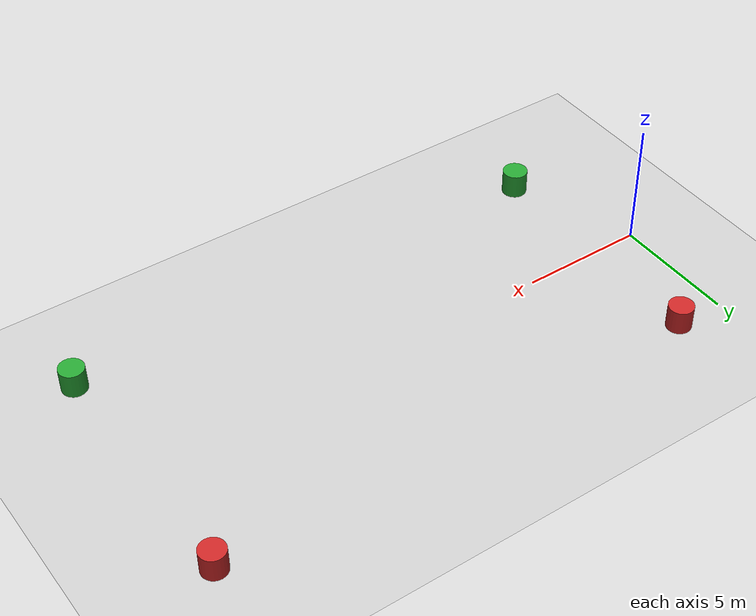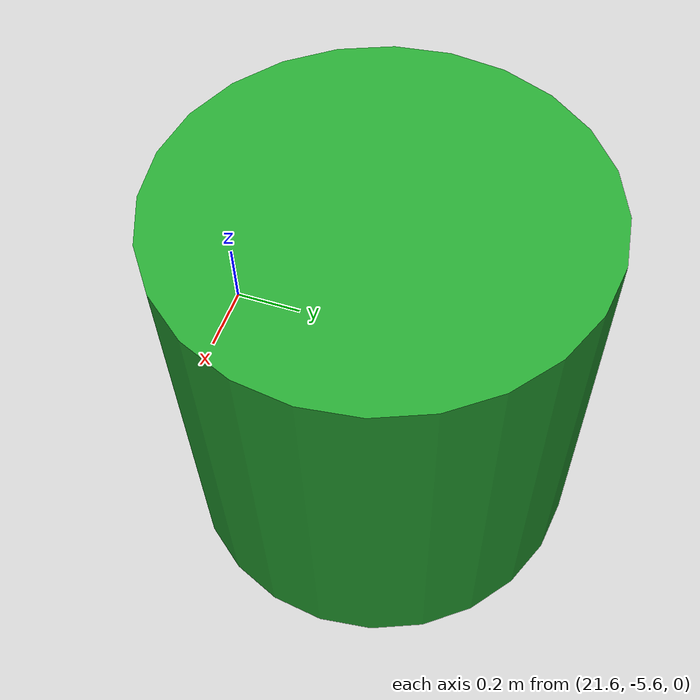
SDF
<sdf version="1.6">
 <world name="default">
  <light name="sun" type="directional">
   <pose>0 0 10 0 -0 0</pose>
   <diffuse>0.8 0.8 0.8 1</diffuse>
   <specular>0.1 0.1 0.1 1</specular>
   <attenuation>
    <range>1000</range>
    <constant>0.9</constant>
    <linear>0.01</linear>
    <quadratic>0.001</quadratic>
   </attenuation>
   <direction>-0.5 0.5 -1</direction>
  </light>
  <model name="ground_plane">
   <static>1</static>
   <link name="link">
    <collision name="collision">
     <geometry><plane><normal>0 0 1</normal><size>100 100</size></plane></geometry>
     <surface><friction><ode><mu>100</mu><mu2>50</mu2></ode></friction></surface>
    </collision>
    <visual name="visual">
     <cast_shadows>0</cast_shadows>
     <geometry><plane><normal>0 0 1</normal><size>100 100</size></plane></geometry>
     <material>
      <script><uri>file://media/materials/scripts/gazebo.material</uri><name>Gazebo/Grey</name></script>
     </material>
    </visual>
   </link>
  </model>
  <gravity>0 0 -9.8</gravity>
  <magnetic_field>6e-06 2.3e-05 -4.2e-05</magnetic_field>
  <atmosphere type="adiabatic"/>
  <physics name="default_physics" default="0" type="ode">
   <max_step_size>0.001</max_step_size>
   <real_time_factor>1</real_time_factor>
   <real_time_update_rate>1000</real_time_update_rate>
  </physics>
  <scene><ambient>0.4 0.4 0.4 1</ambient><background>0.7 0.7 0.7 1</background><shadows>1</shadows></scene>
  <spherical_coordinates>
   <surface_model>EARTH_WGS84</surface_model>
   <latitude_deg>1.35013</latitude_deg>
   <longitude_deg>103.688</longitude_deg>
   <elevation>0</elevation>
   <heading_deg>0</heading_deg>
  </spherical_coordinates>
  <model name="red_cylinder">
   <link name="link">
    <inertial>
     <mass>1</mass>
     <inertia><ixx>0.145833</ixx><ixy>0</ixy><ixz>0</ixz><iyy>0.145833</iyy><iyz>0</iyz><izz>0.125</izz></inertia>
    </inertial>
    <visual name="visual">
     <geometry><cylinder><radius>0.5</radius><length>1</length></cylinder></geometry>
     <material>
      <script><name>Gazebo/Red</name><uri>file://media/materials/scripts/gazebo.material</uri></script>
      <ambient>1 0 0 1</ambient>
      <diffuse>1 0 0 1</diffuse>
      <specular>1 0 0 1</specular>
      <emissive>1 0 0 1</emissive>
      <shader type="vertex"><normal_map>__default__</normal_map></shader>
     </material>
    </visual>
    <collision name="collision">
     <geometry><cylinder><radius>0.5</radius><length>1</length></cylinder></geometry>
     <surface>
      <friction>
       <ode><mu>1</mu><mu2>1</mu2><fdir1>0 0 0</fdir1><slip1>0</slip1><slip2>0</slip2></ode>
       <torsional>
        <coefficient>1</coefficient>
        <patch_radius>0</patch_radius>
        <surface_radius>0</surface_radius>
        <use_patch_radius>1</use_patch_radius>
        <ode><slip>0</slip></ode>
       </torsional>
      </friction>
      <bounce><restitution_coefficient>0</restitution_coefficient><threshold>1e+06</threshold></bounce>
      <contact>
       <collide_without_contact>0</collide_without_contact>
       <collide_without_contact_bitmask>1</collide_without_contact_bitmask>
       <collide_bitmask>1</collide_bitmask>
       <ode>
        <soft_cfm>0</soft_cfm>
        <soft_erp>0.2</soft_erp>
        <kp>1e+13</kp>
        <kd>1</kd>
        <max_vel>0.01</max_vel>
        <min_depth>0</min_depth>
       </ode>
       <bullet>
        <split_impulse>1</split_impulse>
        <split_impulse_penetration_threshold>-0.01</split_impulse_penetration_threshold>
        <soft_cfm>0</soft_cfm>
        <soft_erp>0.2</soft_erp>
        <kp>1e+13</kp>
        <kd>1</kd>
       </bullet>
      </contact>
     </surface>
    </collision>
   </link>
   <static>0</static>
   <pose>2 5 0.5 0 0 0</pose>
  </model>
  <model name="green_cylinder_2">
   <link name="link">
    <inertial>
     <mass>1</mass>
     <inertia><ixx>0.145833</ixx><ixy>0</ixy><ixz>0</ixz><iyy>0.145833</iyy><iyz>0</iyz><izz>0.125</izz></inertia>
    </inertial>
    <visual name="visual">
     <geometry><cylinder><radius>0.5</radius><length>1</length></cylinder></geometry>
     <material>
      <script><name>Gazebo/Green</name><uri>file://media/materials/scripts/gazebo.material</uri></script>
      <ambient>0 1 0 1</ambient>
      <diffuse>0 1 0 1</diffuse>
      <specular>0 1 0 1</specular>
      <emissive>0 1 0 1</emissive>
      <shader type="vertex"><normal_map>__default__</normal_map></shader>
     </material>
    </visual>
    <collision name="collision">
     <geometry><cylinder><radius>0.5</radius><length>1</length></cylinder></geometry>
     <surface>
      <friction>
       <ode><mu>1</mu><mu2>1</mu2><fdir1>0 0 0</fdir1><slip1>0</slip1><slip2>0</slip2></ode>
       <torsional>
        <coefficient>1</coefficient>
        <patch_radius>0</patch_radius>
        <surface_radius>0</surface_radius>
        <use_patch_radius>1</use_patch_radius>
        <ode><slip>0</slip></ode>
       </torsional>
      </friction>
      <bounce><restitution_coefficient>0</restitution_coefficient><threshold>1e+06</threshold></bounce>
      <contact>
       <collide_without_contact>0</collide_without_contact>
       <collide_without_contact_bitmask>1</collide_without_contact_bitmask>
       <collide_bitmask>1</collide_bitmask>
       <ode>
        <soft_cfm>0</soft_cfm>
        <soft_erp>0.2</soft_erp>
        <kp>1e+13</kp>
        <kd>1</kd>
        <max_vel>0.01</max_vel>
        <min_depth>0</min_depth>
       </ode>
       <bullet>
        <split_impulse>1</split_impulse>
        <split_impulse_penetration_threshold>-0.01</split_impulse_penetration_threshold>
        <soft_cfm>0</soft_cfm>
        <soft_erp>0.2</soft_erp>
        <kp>1e+13</kp>
        <kd>1</kd>
       </bullet>
      </contact>
     </surface>
    </collision>
   </link>
   <static>0</static>
   <pose>2 -5 0.5 0 0 0</pose>
  </model>
  <model name="red_cylinder_clone">
   <link name="link">
    <inertial>
     <mass>1</mass>
     <inertia><ixx>0.145833</ixx><ixy>0</ixy><ixz>0</ixz><iyy>0.145833</iyy><iyz>0</iyz><izz>0.125</izz></inertia>
    </inertial>
    <visual name="visual">
     <geometry><cylinder><radius>0.5</radius><length>1</length></cylinder></geometry>
     <material>
      <script><name>Gazebo/Red</name><uri>file://media/materials/scripts/gazebo.material</uri></script>
      <ambient>1 0 0 1</ambient>
      <diffuse>1 0 0 1</diffuse>
      <specular>1 0 0 1</specular>
      <emissive>1 0 0 1</emissive>
      <shader type="vertex"><normal_map>__default__</normal_map></shader>
     </material>
    </visual>
    <collision name="collision">
     <geometry><cylinder><radius>0.5</radius><length>1</length></cylinder></geometry>
     <surface>
      <friction>
       <ode><mu>1</mu><mu2>1</mu2><fdir1>0 0 0</fdir1><slip1>0</slip1><slip2>0</slip2></ode>
       <torsional>
        <coefficient>1</coefficient>
        <patch_radius>0</patch_radius>
        <surface_radius>0</surface_radius>
        <use_patch_radius>1</use_patch_radius>
        <ode><slip>0</slip></ode>
       </torsional>
      </friction>
      <bounce><restitution_coefficient>0</restitution_coefficient><threshold>1e+06</threshold></bounce>
      <contact>
       <collide_without_contact>0</collide_without_contact>
       <collide_without_contact_bitmask>1</collide_without_contact_bitmask>
       <collide_bitmask>1</collide_bitmask>
       <ode>
        <soft_cfm>0</soft_cfm>
        <soft_erp>0.2</soft_erp>
        <kp>1e+13</kp>
        <kd>1</kd>
        <max_vel>0.01</max_vel>
        <min_depth>0</min_depth>
       </ode>
       <bullet>
        <split_impulse>1</split_impulse>
        <split_impulse_penetration_threshold>-0.01</split_impulse_penetration_threshold>
        <soft_cfm>0</soft_cfm>
        <soft_erp>0.2</soft_erp>
        <kp>1e+13</kp>
        <kd>1</kd>
       </bullet>
      </contact>
     </surface>
    </collision>
   </link>
   <static>0</static>
   <pose>22 5 0.5 0 0 0</pose>
  </model>
  <model name="green_cylinder_2_clone">
   <link name="link">
    <inertial>
     <mass>1</mass>
     <inertia><ixx>0.145833</ixx><ixy>0</ixy><ixz>0</ixz><iyy>0.145833</iyy><iyz>0</iyz><izz>0.125</izz></inertia>
    </inertial>
    <visual name="visual">
     <geometry><cylinder><radius>0.5</radius><length>1</length></cylinder></geometry>
     <material>
      <script><name>Gazebo/Green</name><uri>file://media/materials/scripts/gazebo.material</uri></script>
      <ambient>0 1 0 1</ambient>
      <diffuse>0 1 0 1</diffuse>
      <specular>0 1 0 1</specular>
      <emissive>0 1 0 1</emissive>
      <shader type="vertex"><normal_map>__default__</normal_map></shader>
     </material>
    </visual>
    <collision name="collision">
     <geometry><cylinder><radius>0.5</radius><length>1</length></cylinder></geometry>
     <surface>
      <friction>
       <ode><mu>1</mu><mu2>1</mu2><fdir1>0 0 0</fdir1><slip1>0</slip1><slip2>0</slip2></ode>
       <torsional>
        <coefficient>1</coefficient>
        <patch_radius>0</patch_radius>
        <surface_radius>0</surface_radius>
        <use_patch_radius>1</use_patch_radius>
        <ode><slip>0</slip></ode>
       </torsional>
      </friction>
      <bounce><restitution_coefficient>0</restitution_coefficient><threshold>1e+06</threshold></bounce>
      <contact>
       <collide_without_contact>0</collide_without_contact>
       <collide_without_contact_bitmask>1</collide_without_contact_bitmask>
       <collide_bitmask>1</collide_bitmask>
       <ode>
        <soft_cfm>0</soft_cfm>
        <soft_erp>0.2</soft_erp>
        <kp>1e+13</kp>
        <kd>1</kd>
        <max_vel>0.01</max_vel>
        <min_depth>0</min_depth>
       </ode>
       <bullet>
        <split_impulse>1</split_impulse>
        <split_impulse_penetration_threshold>-0.01</split_impulse_penetration_threshold>
        <soft_cfm>0</soft_cfm>
        <soft_erp>0.2</soft_erp>
        <kp>1e+13</kp>
        <kd>1</kd>
       </bullet>
      </contact>
     </surface>
    </collision>
   </link>
   <static>0</static>
   <pose>22 -5 0.5 0 0 0</pose>
  </model>
 </world>
</sdf>
